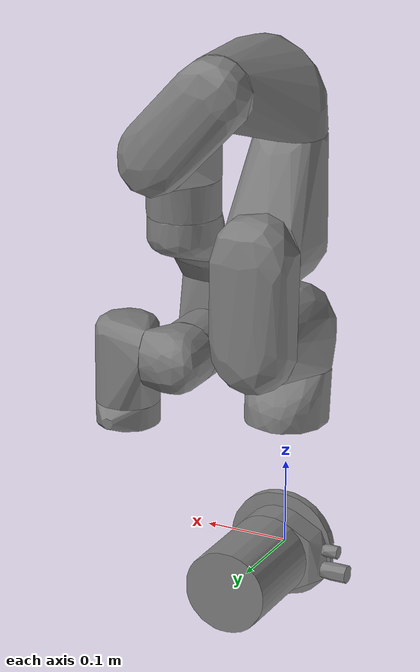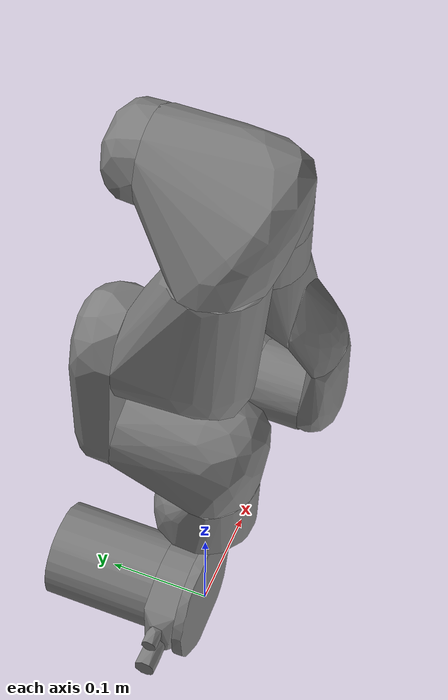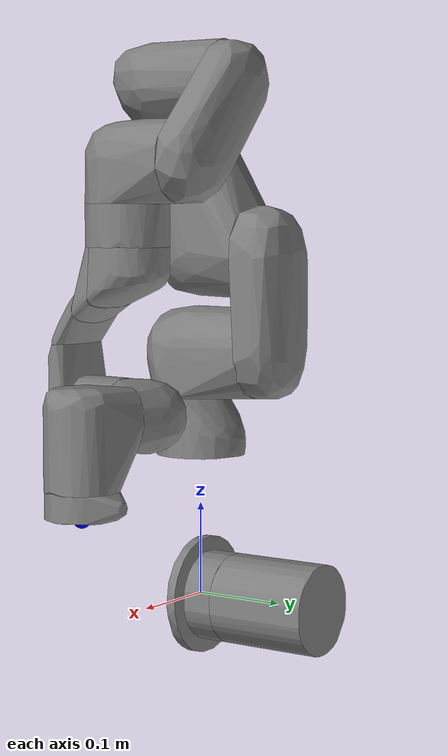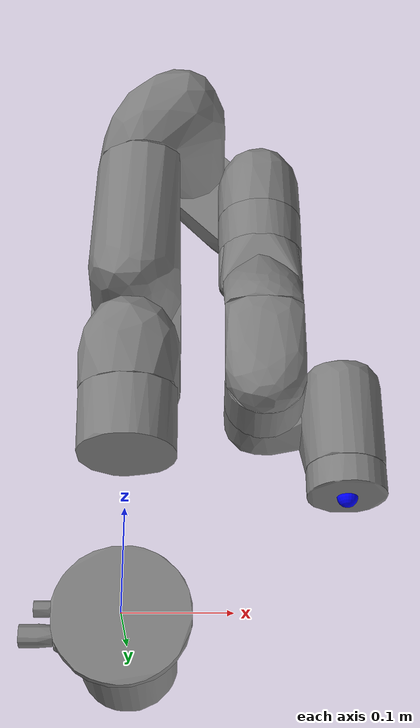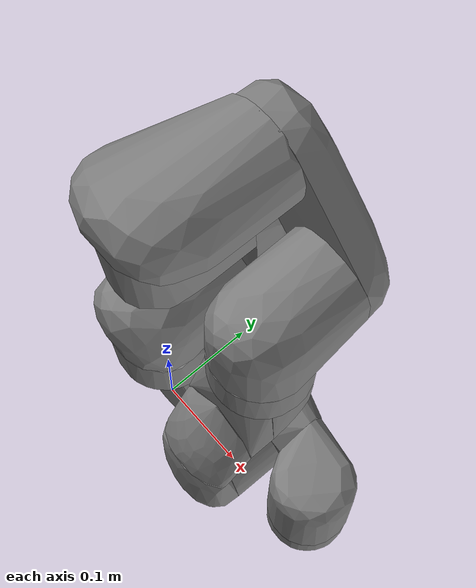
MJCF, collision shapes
<mujoco model="xarm6">
  <compiler angle="radian" autolimits="true"/>

  <option integrator="implicitfast"/>

  <default>
    <default class="visual">
      <geom type="mesh" contype="0" conaffinity="0" group="1" density="0"/>
    </default>
    <default class="collision">
      <geom type="mesh" group="0"/>
    </default>
  </default>

  <asset>
    <material name="white" rgba="1 1 1 1"/>
    <material name="gray" rgba="0.753 0.753 0.753 1"/>
    <material name="black" rgba="0.149 0.149 0.149 1"/>

    <mesh name="link_base" file="meshes/visual/link_base.obj"/>
    <mesh name="link1" file="meshes/visual/link1.obj"/>
    <mesh name="link2" file="meshes/visual/link2.obj"/>
    <mesh name="link3" file="meshes/visual/link3.obj"/>
    <mesh name="link4" file="meshes/visual/link4.obj"/>
    <mesh name="link5" file="meshes/visual/link5.obj"/>
    <mesh name="link6" file="meshes/visual/link6.obj"/>

    <mesh name="link_base_c0" file="meshes/collision/link_base_0.obj"/>
    <mesh name="link_base_c1" file="meshes/collision/link_base_1.obj"/>
    <mesh name="link_base_c2" file="meshes/collision/link_base_2.obj"/>
    <mesh name="link_base_c3" file="meshes/collision/link_base_3.obj"/>
    <mesh name="link_base_c4" file="meshes/collision/link_base_4.obj"/>
    <mesh name="link1_c0" file="meshes/collision/link1_0.obj"/>
    <mesh name="link1_c1" file="meshes/collision/link1_1.obj"/>
    <mesh name="link2_c0" file="meshes/collision/link2_0.obj"/>
    <mesh name="link2_c1" file="meshes/collision/link2_1.obj"/>
    <mesh name="link2_c2" file="meshes/collision/link2_2.obj"/>
    <mesh name="link3_c0" file="meshes/collision/link3_0.obj"/>
    <mesh name="link3_c1" file="meshes/collision/link3_1.obj"/>
    <mesh name="link3_c2" file="meshes/collision/link3_2.obj"/>
    <mesh name="link4_c0" file="meshes/collision/link4_0.obj"/>
    <mesh name="link4_c1" file="meshes/collision/link4_1.obj"/>
    <mesh name="link4_c2" file="meshes/collision/link4_2.obj"/>
    <mesh name="link4_c3" file="meshes/collision/link4_3.obj"/>
    <mesh name="link4_c4" file="meshes/collision/link4_4.obj"/>
    <mesh name="link5_c0" file="meshes/collision/link5_0.obj"/>
    <mesh name="link5_c1" file="meshes/collision/link5_1.obj"/>
    <mesh name="link6_c0" file="meshes/collision/link6_0.obj"/>
  </asset>

  <worldbody>
    <body name="base" pos="0 0 0">
      <!-- robot view -->
      <camera mode="fixed" name="robotview" pos="1.0 0 0.4" quat="0.653 0.271 0.271 0.653"/>
      <!-- mount attached here -->

      <inertial pos="0 0 0.09103" quat="0.981065 0.000747228 -0.0021866 -0.193666" mass="2.7"
        diaginertia="0.00495024 0.00494031 0.00221894"/>
      <geom class="visual" material="white" mesh="link_base"/>
      <geom class="collision" name="link_base_collision_0" mesh="link_base_c0"/>
      <geom class="collision" name="link_base_collision_1" mesh="link_base_c1"/>
      <geom class="collision" name="link_base_collision_2" mesh="link_base_c2"/>
      <geom class="collision" name="link_base_collision_3" mesh="link_base_c3"/>
      <geom class="collision" name="link_base_collision_4" mesh="link_base_c4"/>
      <body name="link1" pos="0 0 0.267">
        <site name="right_center" pos="0 0 0" size="0.01" rgba="1 0.3 0.3 1" group="2"/>
        <inertial pos="-0.002 0.02692 -0.01332" quat="0.983139 0.180751 -0.00455228 0.0272976" mass="2.16"
          diaginertia="0.00539487 0.00519906 0.00281397"/>
        <joint name="joint1" axis="0 0 1" range="-6.28319 6.28319" frictionloss="1" damping="0.1"/>
        <geom class="visual" material="white" mesh="link1"/>
        <geom class="collision" name="link1_collision_0" mesh="link1_c0"/>
        <geom class="collision" name="link1_collision_1" mesh="link1_c1"/>
        <body name="link2" quat="1 -1 0 0">
          <!-- diaginertia below is the minimally-corrected version of the URDF's invalid tensor -->
          <inertial pos="0.03531 -0.21398 0.03386" quat="0.214645 -0.60183 0.654652 -0.40393" mass="1.71"
            diaginertia="0.0033212 0.0236436 0.0268997"/>
          <joint name="joint2" axis="0 0 1" range="-2.059 2.0944" frictionloss="1" damping="0.1"/>
          <geom class="visual" material="white" mesh="link2"/>
          <geom class="collision" name="link2_collision_0" mesh="link2_c0"/>
          <geom class="collision" name="link2_collision_1" mesh="link2_c1"/>
          <geom class="collision" name="link2_collision_2" mesh="link2_c2"/>
          <body name="link3" pos="0.0535 -0.2845 0">
            <!-- diaginertia below is the minimally-corrected version of the URDF's invalid tensor -->
            <inertial pos="0.06781 0.10749 0.01457" quat="0.60411 -0.0838317 -0.435089 0.662361" mass="1.384"
              diaginertia="0.00306659 0.00429974 0.0073062"/>
            <joint name="joint3" axis="0 0 1" range="-3.927 0.19198" frictionloss="1" damping="0.1"/>
            <geom class="visual" material="white" mesh="link3"/>
            <geom class="collision" name="link3_collision_0" mesh="link3_c0"/>
            <geom class="collision" name="link3_collision_1" mesh="link3_c1"/>
            <geom class="collision" name="link3_collision_2" mesh="link3_c2"/>
            <body name="link4" pos="0.0775 0.3425 0" quat="1 -1 0 0">
              <inertial pos="-0.00021 0.02578 -0.02538" quat="0.994019 0.0752563 -0.00686804 0.0788347" mass="1.115"
                diaginertia="0.00440091 0.00406855 0.00103407"/>
              <joint name="joint4" axis="0 0 1" range="-6.28319 6.28319" frictionloss="1" damping="0.1"/>
              <geom class="visual" material="white" mesh="link4"/>
              <geom class="collision" name="link4_collision_0" mesh="link4_c0"/>
              <geom class="collision" name="link4_collision_1" mesh="link4_c1"/>
              <geom class="collision" name="link4_collision_2" mesh="link4_c2"/>
              <geom class="collision" name="link4_collision_3" mesh="link4_c3"/>
              <geom class="collision" name="link4_collision_4" mesh="link4_c4"/>
              <body name="link5" quat="1 1 0 0">
                <inertial pos="0.05428 0.01781 0.00543" quat="-0.0766302 0.578118 -0.269638 0.766291" mass="1.275"
                  diaginertia="0.00289757 0.0023276 0.000951789"/>
                <joint name="joint5" axis="0 0 1" range="-1.69297 3.14159" frictionloss="1" damping="0.01"/>
                <geom class="visual" material="white" mesh="link5"/>
                <geom class="collision" name="link5_collision_0" mesh="link5_c0"/>
                <geom class="collision" name="link5_collision_1" mesh="link5_c1"/>
                <body name="link6" pos="0.076 0.097 0" quat="1 -1 0 0">
                  <inertial pos="0 0.00064 -0.00952" quat="0 0.707107 0 0.707107" mass="0.1096"
                    diaginertia="7.9715e-05 4.8111e-05 4.5293e-05"/>
                  <joint name="joint6" axis="0 0 1" range="-6.28319 6.28319" frictionloss="1" damping="0.01"/>
                  <geom class="visual" material="gray" mesh="link6"/>
                  <geom class="collision" name="link6_collision_0" mesh="link6_c0"/>

                  <body name="right_hand" pos="0 0 0" quat="0 0 0 1">
                    <!-- These sites were added for visualization. They are all standardized between models-->
                    <!-- Position mimics the gripper attachment point (right_hand) -->
                    <!--  Y-axis should be perpendicular to grasping motion, and Z-axis should point out of the robot eef -->

                    <!--  Values here must be tuned manually -->
                    <site name="ee" pos="0 0 0" size="0.01 0.01 0.01" rgba="0 0 1 1" type="sphere" group="1"/>
                    <site name="ee_x" pos="0 0 0" size="0.005 .1" quat="0.707105 0.707108 0 0 " rgba="1 0 0 0" type="cylinder"/>
                    <site name="ee_z" pos="0 0 0" size="0.005 .1" quat="0.707105 0 0 0.707108" rgba="0 0 1 0" type="cylinder"/>
                    <site name="ee_y" pos="0 0 0" size="0.005 .1" quat="0.707105 0 0.707108 0 " rgba="0 1 0 0" type="cylinder"/>
                    <!-- This camera points out from the eef. -->
                    <camera mode="fixed" name="eye_in_hand" pos="0.05 0 0" quat="0 0.707108 0.707108 0" fovy="75"/>
                    <!-- to add gripper -->
                  </body>
                </body>
              </body>
            </body>
          </body>
        </body>
      </body>
    </body>
  </worldbody>

  <actuator>
    <!-- Physical limits of the actuator, taken from the URDF joint effort limits. -->
    <motor ctrllimited="true" ctrlrange="-50.0 50.0" joint="joint1" name="torq_j1"/>
    <motor ctrllimited="true" ctrlrange="-50.0 50.0" joint="joint2" name="torq_j2"/>
    <motor ctrllimited="true" ctrlrange="-32.0 32.0" joint="joint3" name="torq_j3"/>
    <motor ctrllimited="true" ctrlrange="-32.0 32.0" joint="joint4" name="torq_j4"/>
    <motor ctrllimited="true" ctrlrange="-32.0 32.0" joint="joint5" name="torq_j5"/>
    <motor ctrllimited="true" ctrlrange="-20.0 20.0" joint="joint6" name="torq_j6"/>
  </actuator>
</mujoco>
